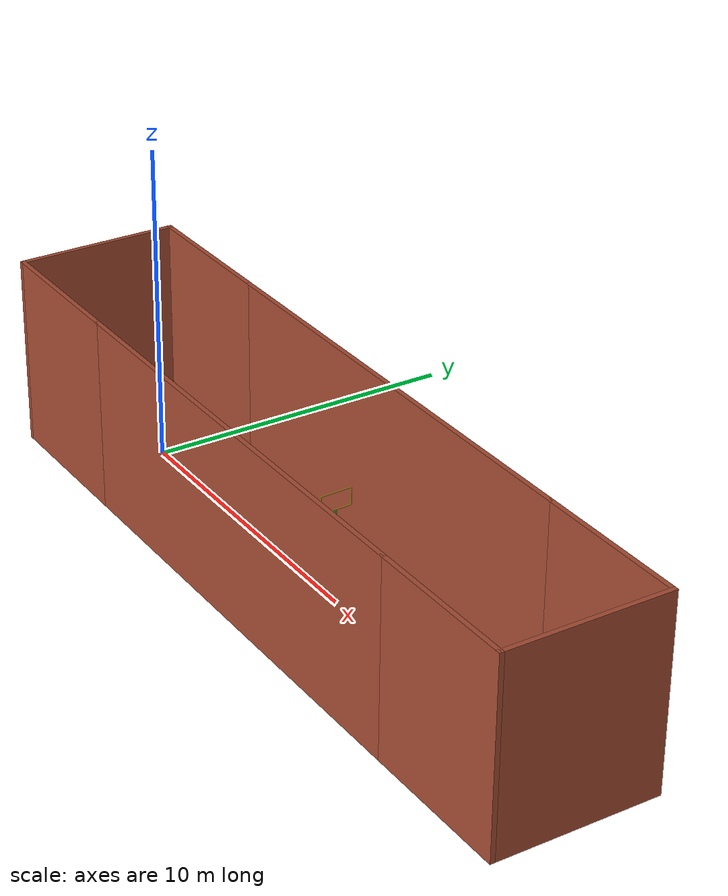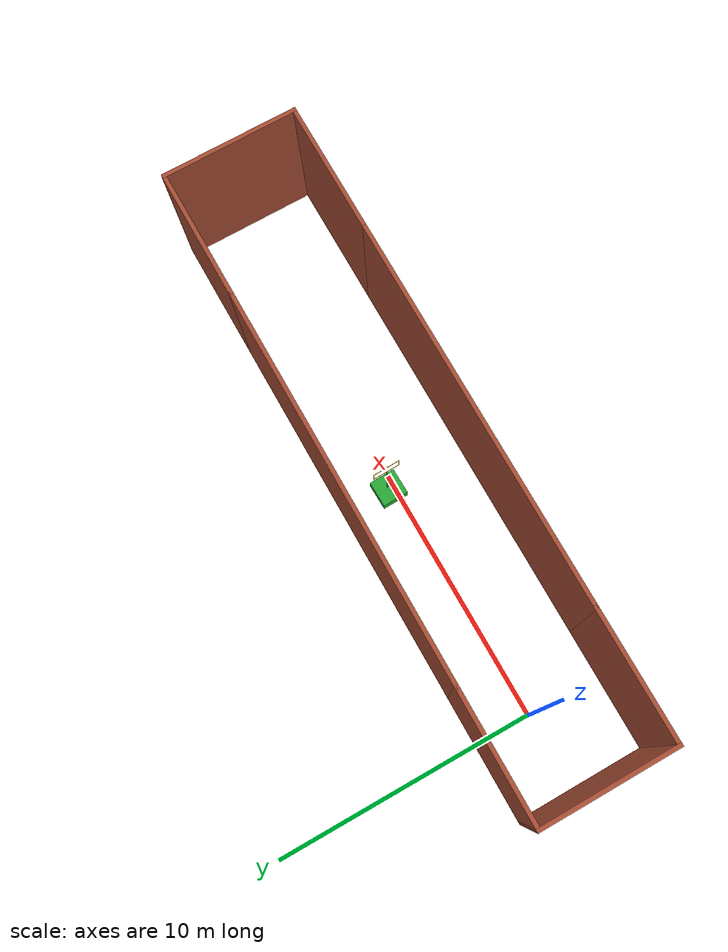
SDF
<sdf version="1.6">
 <world name="vrc_task_1">
  <model name="new_wall_flipkart">
   <pose>9.28007 -0.409473 0 0 -0 0</pose>
   <link name="Wall_1">
    <collision name="Wall_1_Collision">
     <geometry><box><size>5 0.15 6</size></box></geometry>
     <pose>0 0 3 0 -0 0</pose>
    </collision>
    <visual name="Wall_1_Visual">
     <pose>0 0 3 0 -0 0</pose>
     <geometry><box><size>5 0.15 6</size></box></geometry>
     <material>
      <script><uri>file://media/materials/scripts/gazebo.material</uri><name>Gazebo/Bricks</name></script>
      <ambient>1 1 1 1</ambient>
     </material>
     <meta><layer>0</layer></meta>
    </visual>
    <pose>-9.85 2.5 0 0 -0 0</pose>
   </link>
   <link name="Wall_2">
    <collision name="Wall_2_Collision">
     <geometry><box><size>15 0.15 6</size></box></geometry>
     <pose>0 0 3 0 -0 0</pose>
    </collision>
    <visual name="Wall_2_Visual">
     <pose>0 0 3 0 -0 0</pose>
     <geometry><box><size>15 0.15 6</size></box></geometry>
     <material>
      <script><uri>file://media/materials/scripts/gazebo.material</uri><name>Gazebo/Bricks</name></script>
      <ambient>1 1 1 1</ambient>
     </material>
     <meta><layer>0</layer></meta>
    </visual>
    <pose>-0 2.5 0 0 -0 0</pose>
   </link>
   <link name="Wall_3">
    <collision name="Wall_3_Collision">
     <geometry><box><size>5 0.15 6</size></box></geometry>
     <pose>0 0 3 0 -0 0</pose>
    </collision>
    <visual name="Wall_3_Visual">
     <pose>0 0 3 0 -0 0</pose>
     <geometry><box><size>5 0.15 6</size></box></geometry>
     <material>
      <script><uri>file://media/materials/scripts/gazebo.material</uri><name>Gazebo/Bricks</name></script>
      <ambient>1 1 1 1</ambient>
     </material>
     <meta><layer>0</layer></meta>
    </visual>
    <pose>9.85 2.5 0 0 -0 0</pose>
   </link>
   <link name="Wall_4">
    <collision name="Wall_4_Collision">
     <geometry><box><size>5.15 0.15 6</size></box></geometry>
     <pose>0 0 3 0 -0 0</pose>
    </collision>
    <visual name="Wall_4_Visual">
     <pose>0 0 3 0 -0 0</pose>
     <geometry><box><size>5.15 0.15 6</size></box></geometry>
     <material>
      <script><uri>file://media/materials/scripts/gazebo.material</uri><name>Gazebo/Bricks</name></script>
      <ambient>1 1 1 1</ambient>
     </material>
     <meta><layer>0</layer></meta>
    </visual>
    <pose>12.275 0 0 0 -0 -1.5708</pose>
   </link>
   <link name="Wall_6">
    <collision name="Wall_6_Collision">
     <geometry><box><size>5 0.15 6</size></box></geometry>
     <pose>0 0 3 0 -0 0</pose>
    </collision>
    <visual name="Wall_6_Visual">
     <pose>0 0 3 0 -0 0</pose>
     <geometry><box><size>5 0.15 6</size></box></geometry>
     <material>
      <script><uri>file://media/materials/scripts/gazebo.material</uri><name>Gazebo/Bricks</name></script>
      <ambient>1 1 1 1</ambient>
     </material>
     <meta><layer>0</layer></meta>
    </visual>
    <pose>9.85 -2.5 0 0 -0 3.14159</pose>
   </link>
   <link name="Wall_7">
    <collision name="Wall_7_Collision">
     <geometry><box><size>15 0.15 6</size></box></geometry>
     <pose>0 0 3 0 -0 0</pose>
    </collision>
    <visual name="Wall_7_Visual">
     <pose>0 0 3 0 -0 0</pose>
     <geometry><box><size>15 0.15 6</size></box></geometry>
     <material>
      <script><uri>file://media/materials/scripts/gazebo.material</uri><name>Gazebo/Bricks</name></script>
      <ambient>1 1 1 1</ambient>
     </material>
     <meta><layer>0</layer></meta>
    </visual>
    <pose>-0 -2.5 0 0 -0 3.14159</pose>
   </link>
   <link name="Wall_8">
    <collision name="Wall_8_Collision">
     <geometry><box><size>5 0.15 6</size></box></geometry>
     <pose>0 0 3 0 -0 0</pose>
    </collision>
    <visual name="Wall_8_Visual">
     <pose>0 0 3 0 -0 0</pose>
     <geometry><box><size>5 0.15 6</size></box></geometry>
     <material>
      <script><uri>file://media/materials/scripts/gazebo.material</uri><name>Gazebo/Bricks</name></script>
      <ambient>1 1 1 1</ambient>
     </material>
     <meta><layer>0</layer></meta>
    </visual>
    <pose>-9.85 -2.5 0 0 -0 3.14159</pose>
   </link>
   <link name="Wall_9">
    <collision name="Wall_9_Collision">
     <geometry><box><size>5.15 0.15 6</size></box></geometry>
     <pose>0 0 3 0 -0 0</pose>
    </collision>
    <visual name="Wall_9_Visual">
     <pose>0 0 3 0 -0 0</pose>
     <geometry><box><size>5.15 0.15 6</size></box></geometry>
     <material>
      <script><uri>file://media/materials/scripts/gazebo.material</uri><name>Gazebo/Bricks</name></script>
      <ambient>1 1 1 1</ambient>
     </material>
     <meta><layer>0</layer></meta>
    </visual>
    <pose>-12.275 0 0 0 -0 1.5708</pose>
   </link>
   <static>1</static>
  </model>
  <model name="flipkart_hoop_clone_0">
   <link name="link_0">
    <inertial>
     <mass>0.530306</mass>
     <inertia>
      <ixx>0.0566207</ixx>
      <ixy>0</ixy>
      <ixz>0</ixz>
      <iyy>0.0566207</iyy>
      <iyz>0</iyz>
      <izz>0.0883844</izz>
     </inertia>
    </inertial>
    <pose>0.141833 0.667401 -1.68595 0 -0 0</pose>
    <visual name="visual">
     <geometry><box><size>1 1 0.5</size></box></geometry>
     <material>
      <lighting>1</lighting>
      <script><uri>file://media/materials/scripts/gazebo.material</uri><name>Gazebo/Green</name></script>
      <shader type="pixel"/>
      <emissive>0 0 0 1</emissive>
     </material>
    </visual>
    <collision name="collision">
     <geometry><box><size>1 1 0.5</size></box></geometry>
     <surface>
      <friction>
       <ode><mu>1</mu><mu2>1</mu2><fdir1>0 0 0</fdir1><slip1>0</slip1><slip2>0</slip2></ode>
       <torsional>
        <coefficient>1</coefficient>
        <patch_radius>0</patch_radius>
        <surface_radius>0</surface_radius>
        <use_patch_radius>1</use_patch_radius>
        <ode><slip>0</slip></ode>
       </torsional>
      </friction>
      <bounce><restitution_coefficient>0</restitution_coefficient><threshold>1e+06</threshold></bounce>
      <contact>
       <collide_without_contact>0</collide_without_contact>
       <collide_without_contact_bitmask>1</collide_without_contact_bitmask>
       <collide_bitmask>1</collide_bitmask>
       <ode>
        <soft_cfm>0</soft_cfm>
        <soft_erp>0.2</soft_erp>
        <kp>1e+13</kp>
        <kd>1</kd>
        <max_vel>0.01</max_vel>
        <min_depth>0</min_depth>
       </ode>
       <bullet>
        <split_impulse>1</split_impulse>
        <split_impulse_penetration_threshold>-0.01</split_impulse_penetration_threshold>
        <soft_cfm>0</soft_cfm>
        <soft_erp>0.2</soft_erp>
        <kp>1e+13</kp>
        <kd>1</kd>
       </bullet>
      </contact>
     </surface>
    </collision>
   </link>
   <link name="link_1">
    <inertial>
     <mass>0.25</mass>
     <inertia>
      <ixx>0.130247</ixx>
      <ixy>0</ixy>
      <ixz>0</ixz>
      <iyy>0.130247</iyy>
      <iyz>0</iyz>
      <izz>7.813e-05</izz>
     </inertia>
    </inertial>
    <pose>0.122412 0.714194 -0.478486 0 -0 0</pose>
    <visual name="visual">
     <geometry><cylinder><radius>0.025</radius><length>2.5</length></cylinder></geometry>
     <material>
      <lighting>1</lighting>
      <script><uri>file://media/materials/scripts/gazebo.material</uri><name>Gazebo/Green</name></script>
      <shader type="pixel"/>
      <emissive>0 0 0 1</emissive>
     </material>
    </visual>
    <collision name="collision">
     <geometry><cylinder><radius>0.025</radius><length>2.5</length></cylinder></geometry>
     <surface>
      <friction>
       <ode><mu>1</mu><mu2>1</mu2><fdir1>0 0 0</fdir1><slip1>0</slip1><slip2>0</slip2></ode>
       <torsional>
        <coefficient>1</coefficient>
        <patch_radius>0</patch_radius>
        <surface_radius>0</surface_radius>
        <use_patch_radius>1</use_patch_radius>
        <ode><slip>0</slip></ode>
       </torsional>
      </friction>
      <bounce><restitution_coefficient>0</restitution_coefficient><threshold>1e+06</threshold></bounce>
      <contact>
       <collide_without_contact>0</collide_without_contact>
       <collide_without_contact_bitmask>1</collide_without_contact_bitmask>
       <collide_bitmask>1</collide_bitmask>
       <ode>
        <soft_cfm>0</soft_cfm>
        <soft_erp>0.2</soft_erp>
        <kp>1e+13</kp>
        <kd>1</kd>
        <max_vel>0.01</max_vel>
        <min_depth>0</min_depth>
       </ode>
       <bullet>
        <split_impulse>1</split_impulse>
        <split_impulse_penetration_threshold>-0.01</split_impulse_penetration_threshold>
        <soft_cfm>0</soft_cfm>
        <soft_erp>0.2</soft_erp>
        <kp>1e+13</kp>
        <kd>1</kd>
       </bullet>
      </contact>
     </surface>
    </collision>
   </link>
   <link name="link_2">
    <inertial>
     <mass>0.05</mass>
     <inertia>
      <ixx>0.00416862</ixx>
      <ixy>0</ixy>
      <ixz>0</ixz>
      <iyy>0.00416862</iyy>
      <iyz>0</iyz>
      <izz>3.91e-06</izz>
     </inertia>
    </inertial>
    <pose>0.122412 0.714194 1.32141 1.57 -0 1.57</pose>
    <visual name="visual">
     <geometry><cylinder><radius>0.0125</radius><length>1</length></cylinder></geometry>
     <material>
      <lighting>1</lighting>
      <script><uri>file://media/materials/scripts/gazebo.material</uri><name>Gazebo/Yellow</name></script>
      <shader type="pixel"/>
      <emissive>0 0 0 1</emissive>
     </material>
    </visual>
    <collision name="collision">
     <geometry><cylinder><radius>0.0125</radius><length>1</length></cylinder></geometry>
     <surface>
      <friction>
       <ode><mu>1</mu><mu2>1</mu2><fdir1>0 0 0</fdir1><slip1>0</slip1><slip2>0</slip2></ode>
       <torsional>
        <coefficient>1</coefficient>
        <patch_radius>0</patch_radius>
        <surface_radius>0</surface_radius>
        <use_patch_radius>1</use_patch_radius>
        <ode><slip>0</slip></ode>
       </torsional>
      </friction>
      <bounce><restitution_coefficient>0</restitution_coefficient><threshold>1e+06</threshold></bounce>
      <contact>
       <collide_without_contact>0</collide_without_contact>
       <collide_without_contact_bitmask>1</collide_without_contact_bitmask>
       <collide_bitmask>1</collide_bitmask>
       <ode>
        <soft_cfm>0</soft_cfm>
        <soft_erp>0.2</soft_erp>
        <kp>1e+13</kp>
        <kd>1</kd>
        <max_vel>0.01</max_vel>
        <min_depth>0</min_depth>
       </ode>
       <bullet>
        <split_impulse>1</split_impulse>
        <split_impulse_penetration_threshold>-0.01</split_impulse_penetration_threshold>
        <soft_cfm>0</soft_cfm>
        <soft_erp>0.2</soft_erp>
        <kp>1e+13</kp>
        <kd>1</kd>
       </bullet>
      </contact>
     </surface>
    </collision>
   </link>
   <link name="link_2_clone_0">
    <inertial>
     <mass>0.05</mass>
     <inertia>
      <ixx>0.00416862</ixx>
      <ixy>0</ixy>
      <ixz>0</ixz>
      <iyy>0.00416862</iyy>
      <iyz>0</iyz>
      <izz>3.91e-06</izz>
     </inertia>
    </inertial>
    <pose>0.122412 0.714194 0.771414 1.57 -0 1.57</pose>
    <visual name="visual">
     <geometry><cylinder><radius>0.0125</radius><length>1</length></cylinder></geometry>
     <material>
      <lighting>1</lighting>
      <script><uri>file://media/materials/scripts/gazebo.material</uri><name>Gazebo/Yellow</name></script>
      <shader type="pixel"/>
      <emissive>0 0 0 1</emissive>
     </material>
    </visual>
    <collision name="collision">
     <geometry><cylinder><radius>0.0125</radius><length>1</length></cylinder></geometry>
     <surface>
      <friction>
       <ode><mu>1</mu><mu2>1</mu2><fdir1>0 0 0</fdir1><slip1>0</slip1><slip2>0</slip2></ode>
       <torsional>
        <coefficient>1</coefficient>
        <patch_radius>0</patch_radius>
        <surface_radius>0</surface_radius>
        <use_patch_radius>1</use_patch_radius>
        <ode><slip>0</slip></ode>
       </torsional>
      </friction>
      <bounce><restitution_coefficient>0</restitution_coefficient><threshold>1e+06</threshold></bounce>
      <contact>
       <collide_without_contact>0</collide_without_contact>
       <collide_without_contact_bitmask>1</collide_without_contact_bitmask>
       <collide_bitmask>1</collide_bitmask>
       <ode>
        <soft_cfm>0</soft_cfm>
        <soft_erp>0.2</soft_erp>
        <kp>1e+13</kp>
        <kd>1</kd>
        <max_vel>0.01</max_vel>
        <min_depth>0</min_depth>
       </ode>
       <bullet>
        <split_impulse>1</split_impulse>
        <split_impulse_penetration_threshold>-0.01</split_impulse_penetration_threshold>
        <soft_cfm>0</soft_cfm>
        <soft_erp>0.2</soft_erp>
        <kp>1e+13</kp>
        <kd>1</kd>
       </bullet>
      </contact>
     </surface>
    </collision>
   </link>
   <link name="link_3_clone_clone">
    <inertial>
     <mass>0.025</mass>
     <inertia>
      <ixx>0.00063118</ixx>
      <ixy>0</ixy>
      <ixz>0</ixz>
      <iyy>0.00063118</iyy>
      <iyz>0</iyz>
      <izz>1.95e-06</izz>
     </inertia>
    </inertial>
    <pose>-0.377588 0.714194 1.04641 8e-06 -0 8e-06</pose>
    <visual name="visual">
     <geometry><cylinder><radius>0.0125</radius><length>0.55</length></cylinder></geometry>
     <material>
      <lighting>1</lighting>
      <script><uri>file://media/materials/scripts/gazebo.material</uri><name>Gazebo/Yellow</name></script>
      <shader type="pixel"/>
      <emissive>0 0 0 1</emissive>
     </material>
    </visual>
    <collision name="collision">
     <geometry><cylinder><radius>0.0125</radius><length>0.55</length></cylinder></geometry>
     <surface>
      <friction>
       <ode><mu>1</mu><mu2>1</mu2><fdir1>0 0 0</fdir1><slip1>0</slip1><slip2>0</slip2></ode>
       <torsional>
        <coefficient>1</coefficient>
        <patch_radius>0</patch_radius>
        <surface_radius>0</surface_radius>
        <use_patch_radius>1</use_patch_radius>
        <ode><slip>0</slip></ode>
       </torsional>
      </friction>
      <bounce><restitution_coefficient>0</restitution_coefficient><threshold>1e+06</threshold></bounce>
      <contact>
       <collide_without_contact>0</collide_without_contact>
       <collide_without_contact_bitmask>1</collide_without_contact_bitmask>
       <collide_bitmask>1</collide_bitmask>
       <ode>
        <soft_cfm>0</soft_cfm>
        <soft_erp>0.2</soft_erp>
        <kp>1e+13</kp>
        <kd>1</kd>
        <max_vel>0.01</max_vel>
        <min_depth>0</min_depth>
       </ode>
       <bullet>
        <split_impulse>1</split_impulse>
        <split_impulse_penetration_threshold>-0.01</split_impulse_penetration_threshold>
        <soft_cfm>0</soft_cfm>
        <soft_erp>0.2</soft_erp>
        <kp>1e+13</kp>
        <kd>1</kd>
       </bullet>
      </contact>
     </surface>
    </collision>
   </link>
   <link name="link_3_clone_clone_clone">
    <inertial>
     <mass>0.025</mass>
     <inertia>
      <ixx>0.00063118</ixx>
      <ixy>0</ixy>
      <ixz>0</ixz>
      <iyy>0.00063118</iyy>
      <iyz>0</iyz>
      <izz>1.95e-06</izz>
     </inertia>
    </inertial>
    <pose>0.622412 0.714194 1.04641 5.7e-05 -0 5.7e-05</pose>
    <visual name="visual">
     <geometry><cylinder><radius>0.0125</radius><length>0.55</length></cylinder></geometry>
     <material>
      <lighting>1</lighting>
      <script><uri>file://media/materials/scripts/gazebo.material</uri><name>Gazebo/Yellow</name></script>
      <shader type="pixel"/>
      <emissive>0 0 0 1</emissive>
     </material>
    </visual>
    <collision name="collision">
     <geometry><cylinder><radius>0.0125</radius><length>0.55</length></cylinder></geometry>
     <surface>
      <friction>
       <ode><mu>1</mu><mu2>1</mu2><fdir1>0 0 0</fdir1><slip1>0</slip1><slip2>0</slip2></ode>
       <torsional>
        <coefficient>1</coefficient>
        <patch_radius>0</patch_radius>
        <surface_radius>0</surface_radius>
        <use_patch_radius>1</use_patch_radius>
        <ode><slip>0</slip></ode>
       </torsional>
      </friction>
      <bounce><restitution_coefficient>0</restitution_coefficient><threshold>1e+06</threshold></bounce>
      <contact>
       <collide_without_contact>0</collide_without_contact>
       <collide_without_contact_bitmask>1</collide_without_contact_bitmask>
       <collide_bitmask>1</collide_bitmask>
       <ode>
        <soft_cfm>0</soft_cfm>
        <soft_erp>0.2</soft_erp>
        <kp>1e+13</kp>
        <kd>1</kd>
        <max_vel>0.01</max_vel>
        <min_depth>0</min_depth>
       </ode>
       <bullet>
        <split_impulse>1</split_impulse>
        <split_impulse_penetration_threshold>-0.01</split_impulse_penetration_threshold>
        <soft_cfm>0</soft_cfm>
        <soft_erp>0.2</soft_erp>
        <kp>1e+13</kp>
        <kd>1</kd>
       </bullet>
      </contact>
     </surface>
    </collision>
   </link>
   <joint name="link_0_JOINT_0" type="fixed">
    <parent>link_0</parent>
    <child>link_1</child>
    <physics>
     <ode><limit><cfm>0</cfm><erp>0.2</erp></limit><suspension><cfm>0</cfm><erp>0.2</erp></suspension></ode>
    </physics>
   </joint>
   <joint name="link_1_JOINT_0" type="fixed">
    <parent>link_1</parent>
    <child>link_2_clone_0</child>
    <physics>
     <ode><limit><cfm>0</cfm><erp>0.2</erp></limit><suspension><cfm>0</cfm><erp>0.2</erp></suspension></ode>
    </physics>
   </joint>
   <joint name="link_2_JOINT_2" type="fixed">
    <parent>link_2</parent>
    <child>link_3_clone_clone_clone</child>
    <physics>
     <ode><limit><cfm>0</cfm><erp>0.2</erp></limit><suspension><cfm>0</cfm><erp>0.2</erp></suspension></ode>
    </physics>
   </joint>
   <joint name="link_2_clone_0_JOINT_4" type="fixed">
    <parent>link_2_clone_0</parent>
    <child>link_3_clone_clone</child>
    <physics>
     <ode><limit><cfm>0</cfm><erp>0.2</erp></limit><suspension><cfm>0</cfm><erp>0.2</erp></suspension></ode>
    </physics>
   </joint>
   <joint name="link_3_clone_clone_JOINT_1" type="fixed">
    <parent>link_3_clone_clone</parent>
    <child>link_2</child>
    <physics>
     <ode><limit><cfm>0</cfm><erp>0.2</erp></limit><suspension><cfm>0</cfm><erp>0.2</erp></suspension></ode>
    </physics>
   </joint>
   <joint name="link_3_clone_clone_clone_JOINT_3" type="fixed">
    <parent>link_3_clone_clone_clone</parent>
    <child>link_2_clone_0</child>
    <physics>
     <ode><limit><cfm>0</cfm><erp>0.2</erp></limit><suspension><cfm>0</cfm><erp>0.2</erp></suspension></ode>
    </physics>
   </joint>
   <static>0</static>
   <pose>8.87326 0.371175 1.9359 -3e-06 -6.6e-05 -1.54235</pose>
  </model>
 </world>
</sdf>
